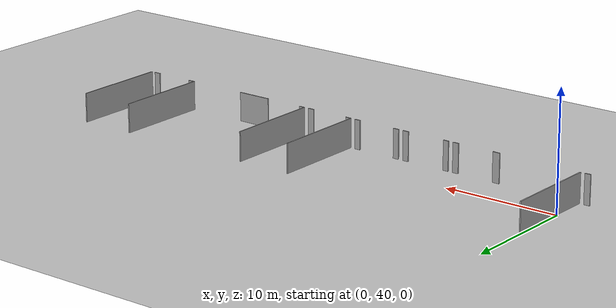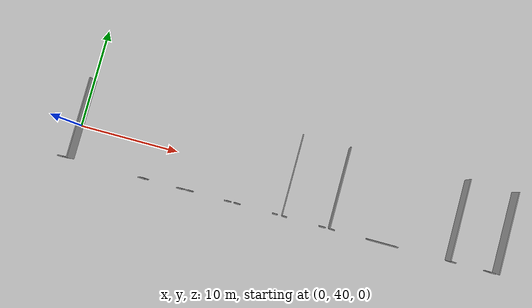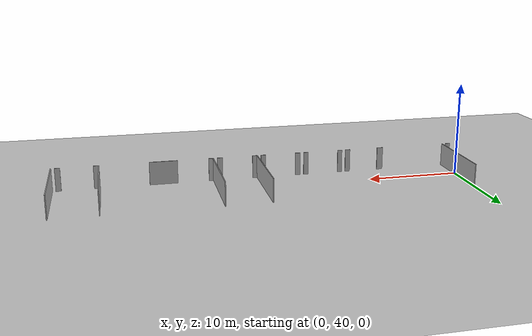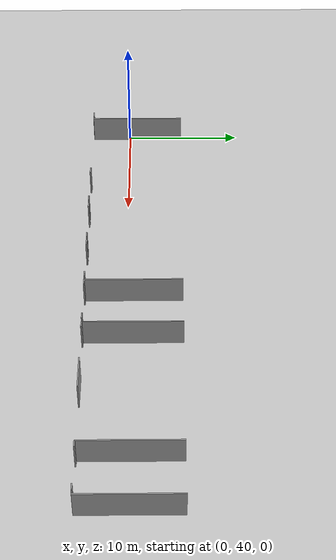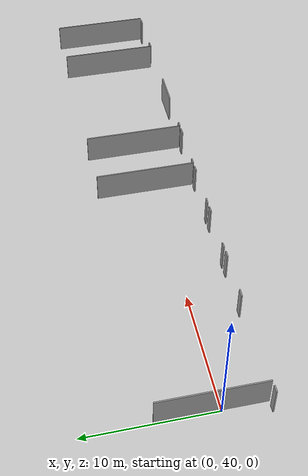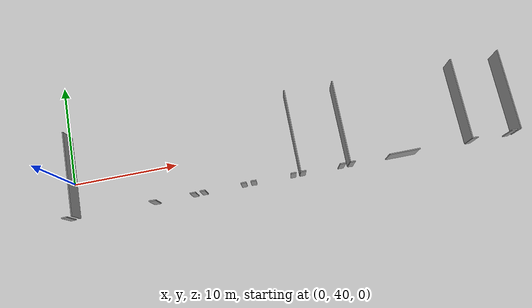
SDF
<sdf version="1.6">
 <world name="default">
  <model name="ground_plane">
   <static>1</static>
   <link name="link">
    <collision name="collision">
     <geometry><plane><normal>0 0 1</normal><size>100 100</size></plane></geometry>
     <surface><friction><ode><mu>100</mu><mu2>50</mu2></ode></friction></surface>
    </collision>
    <visual name="visual">
     <cast_shadows>0</cast_shadows>
     <geometry><plane><normal>0 0 1</normal><size>100 100</size></plane></geometry>
     <material>
      <script><uri>file://media/materials/scripts/gazebo.material</uri><name>Gazebo/Grey</name></script>
     </material>
    </visual>
   </link>
  </model>
  <model name="0510035517_A_40_1_105">
   <static>1</static>
   <link name="Wall_204">
    <collision name="Wall_204_Collision">
     <geometry><box><size>8.21638931778 0.1 2.5</size></box></geometry>
     <pose>4.10819465889 0 1.25 0 0 0</pose>
    </collision>
    <visual name="Wall_204_Visual">
     <pose>4.10819465889 0 1.25 0 0 0</pose>
     <geometry><box><size>8.21638931778 0.1 2.5</size></box></geometry>
     <material>
      <script><uri>file://media/materials/scripts/gazebo.material</uri><name>Gazebo/Grey</name></script>
      <ambient>1 1 1 1</ambient>
     </material>
    </visual>
    <pose>137.98389915 -27.191246831 0 0 0 1.57079632679</pose>
   </link>
   <link name="Wall_210">
    <collision name="Wall_210_Collision">
     <geometry><box><size>8.18690709924 0.1 2.5</size></box></geometry>
     <pose>4.09345354962 0 1.25 0 0 0</pose>
    </collision>
    <visual name="Wall_210_Visual">
     <pose>4.09345354962 0 1.25 0 0 0</pose>
     <geometry><box><size>8.18690709924 0.1 2.5</size></box></geometry>
     <material>
      <script><uri>file://media/materials/scripts/gazebo.material</uri><name>Gazebo/Grey</name></script>
      <ambient>1 1 1 1</ambient>
     </material>
    </visual>
    <pose>133.171435288 -27.1848929046 0 0 0 1.57079632679</pose>
   </link>
   <link name="Wall_214">
    <collision name="Wall_214_Collision">
     <geometry><box><size>0.555079011075 0.1 2.5</size></box></geometry>
     <pose>0.277539505537 0 1.25 0 0 0</pose>
    </collision>
    <visual name="Wall_214_Visual">
     <pose>0.277539505537 0 1.25 0 0 0</pose>
     <geometry><box><size>0.555079011075 0.1 2.5</size></box></geometry>
     <material>
      <script><uri>file://media/materials/scripts/gazebo.material</uri><name>Gazebo/Grey</name></script>
      <ambient>1 1 1 1</ambient>
     </material>
    </visual>
    <pose>137.612575691 -27.1871803181 0 0 0 3.14159265359</pose>
   </link>
   <link name="Wall_215">
    <collision name="Wall_215_Collision">
     <geometry><box><size>0.557116963382 0.1 2.5</size></box></geometry>
     <pose>0.278558481691 0 1.25 0 0 0</pose>
    </collision>
    <visual name="Wall_215_Visual">
     <pose>0.278558481691 0 1.25 0 0 0</pose>
     <geometry><box><size>0.557116963382 0.1 2.5</size></box></geometry>
     <material>
      <script><uri>file://media/materials/scripts/gazebo.material</uri><name>Gazebo/Grey</name></script>
      <ambient>1 1 1 1</ambient>
     </material>
    </visual>
    <pose>133.728547556 -27.1871803181 0 0 0 3.13748683725</pose>
   </link>
   <link name="Wall_222">
    <collision name="Wall_222_Collision">
     <geometry><box><size>8.18944866981 0.1 2.5</size></box></geometry>
     <pose>4.0947243349 0 1.25 0 0 0</pose>
    </collision>
    <visual name="Wall_222_Visual">
     <pose>4.0947243349 0 1.25 0 0 0</pose>
     <geometry><box><size>8.18944866981 0.1 2.5</size></box></geometry>
     <material>
      <script><uri>file://media/materials/scripts/gazebo.material</uri><name>Gazebo/Grey</name></script>
      <ambient>1 1 1 1</ambient>
     </material>
    </visual>
    <pose>121.183101097 -27.182097177 0 0 0 1.57079632679</pose>
   </link>
   <link name="Wall_226">
    <collision name="Wall_226_Collision">
     <geometry><box><size>2.9825330563 0.1 2.5</size></box></geometry>
     <pose>1.49126652815 0 1.25 0 0 0</pose>
    </collision>
    <visual name="Wall_226_Visual">
     <pose>1.49126652815 0 1.25 0 0 0</pose>
     <geometry><box><size>2.9825330563 0.1 2.5</size></box></geometry>
     <material>
      <script><uri>file://media/materials/scripts/gazebo.material</uri><name>Gazebo/Grey</name></script>
      <ambient>1 1 1 1</ambient>
     </material>
    </visual>
    <pose>127.999847506 -27.2037005267 0 0 0 3.14159265359</pose>
   </link>
   <link name="Wall_227">
    <collision name="Wall_227_Collision">
     <geometry><box><size>0.503694466396 0.1 2.5</size></box></geometry>
     <pose>0.251847233198 0 1.25 0 0 0</pose>
    </collision>
    <visual name="Wall_227_Visual">
     <pose>0.251847233198 0 1.25 0 0 0</pose>
     <geometry><box><size>0.503694466396 0.1 2.5</size></box></geometry>
     <material>
      <script><uri>file://media/materials/scripts/gazebo.material</uri><name>Gazebo/Grey</name></script>
      <ambient>1 1 1 1</ambient>
     </material>
    </visual>
    <pose>121.686332069 -27.2037005267 0 0 0 3.09868970335</pose>
   </link>
   <link name="Wall_228">
    <collision name="Wall_228_Collision">
     <geometry><box><size>8.1772491311 0.1 2.5</size></box></geometry>
     <pose>4.08862456555 0 1.25 0 0 0</pose>
    </collision>
    <visual name="Wall_228_Visual">
     <pose>4.08862456555 0 1.25 0 0 0</pose>
     <geometry><box><size>8.1772491311 0.1 2.5</size></box></geometry>
     <material>
      <script><uri>file://media/materials/scripts/gazebo.material</uri><name>Gazebo/Grey</name></script>
      <ambient>1 1 1 1</ambient>
     </material>
    </visual>
    <pose>116.385124187 -27.1848929046 0 0 0 1.57079632679</pose>
   </link>
   <link name="Wall_232">
    <collision name="Wall_232_Collision">
     <geometry><box><size>0.565499450385 0.1 2.5</size></box></geometry>
     <pose>0.282749725193 0 1.25 0 0 0</pose>
    </collision>
    <visual name="Wall_232_Visual">
     <pose>0.282749725193 0 1.25 0 0 0</pose>
     <geometry><box><size>0.565499450385 0.1 2.5</size></box></geometry>
     <material>
      <script><uri>file://media/materials/scripts/gazebo.material</uri><name>Gazebo/Grey</name></script>
      <ambient>1 1 1 1</ambient>
     </material>
    </visual>
    <pose>120.757642185 -27.1973466003 0 0 0 3.14159265359</pose>
   </link>
   <link name="Wall_233">
    <collision name="Wall_233_Collision">
     <geometry><box><size>0.521424865642 0.1 2.5</size></box></geometry>
     <pose>0.260712432821 0 1.25 0 0 0</pose>
    </collision>
    <visual name="Wall_233_Visual">
     <pose>0.260712432821 0 1.25 0 0 0</pose>
     <geometry><box><size>0.521424865642 0.1 2.5</size></box></geometry>
     <material>
      <script><uri>file://media/materials/scripts/gazebo.material</uri><name>Gazebo/Grey</name></script>
      <ambient>1 1 1 1</ambient>
     </material>
    </visual>
    <pose>116.90640031 -27.1973466003 0 0 0 3.11770641243</pose>
   </link>
   <link name="Wall_238">
    <collision name="Wall_238_Collision">
     <geometry><box><size>0.523309379031 0.1 2.5</size></box></geometry>
     <pose>0.261654689515 0 1.25 0 0 0</pose>
    </collision>
    <visual name="Wall_238_Visual">
     <pose>0.261654689515 0 1.25 0 0 0</pose>
     <geometry><box><size>0.523309379031 0.1 2.5</size></box></geometry>
     <material>
      <script><uri>file://media/materials/scripts/gazebo.material</uri><name>Gazebo/Grey</name></script>
      <ambient>1 1 1 1</ambient>
     </material>
    </visual>
    <pose>115.962969317 -27.1892135745 0 0 0 3.14159265359</pose>
   </link>
   <link name="Wall_239">
    <collision name="Wall_239_Collision">
     <geometry><box><size>0.531881316064 0.1 2.5</size></box></geometry>
     <pose>0.265940658032 0 1.25 0 0 0</pose>
    </collision>
    <visual name="Wall_239_Visual">
     <pose>0.265940658032 0 1.25 0 0 0</pose>
     <geometry><box><size>0.531881316064 0.1 2.5</size></box></geometry>
     <material>
      <script><uri>file://media/materials/scripts/gazebo.material</uri><name>Gazebo/Grey</name></script>
      <ambient>1 1 1 1</ambient>
     </material>
    </visual>
    <pose>112.112998227 -27.1892135745 0 0 0 3.10096461591</pose>
   </link>
   <link name="Wall_244">
    <collision name="Wall_244_Collision">
     <geometry><box><size>0.5240718502 0.1 2.5</size></box></geometry>
     <pose>0.2620359251 0 1.25 0 0 0</pose>
    </collision>
    <visual name="Wall_244_Visual">
     <pose>0.2620359251 0 1.25 0 0 0</pose>
     <geometry><box><size>0.5240718502 0.1 2.5</size></box></geometry>
     <material>
      <script><uri>file://media/materials/scripts/gazebo.material</uri><name>Gazebo/Grey</name></script>
      <ambient>1 1 1 1</ambient>
     </material>
    </visual>
    <pose>111.164484093 -27.1874344751 0 0 0 3.14159265359</pose>
   </link>
   <link name="Wall_245">
    <collision name="Wall_245_Collision">
     <geometry><box><size>0.49009554032 0.1 2.5</size></box></geometry>
     <pose>0.24504777016 0 1.25 0 0 0</pose>
    </collision>
    <visual name="Wall_245_Visual">
     <pose>0.24504777016 0 1.25 0 0 0</pose>
     <geometry><box><size>0.49009554032 0.1 2.5</size></box></geometry>
     <material>
      <script><uri>file://media/materials/scripts/gazebo.material</uri><name>Gazebo/Grey</name></script>
      <ambient>1 1 1 1</ambient>
     </material>
    </visual>
    <pose>107.262919121 -27.1874344751 0 0 0 3.12344112039</pose>
   </link>
   <link name="Wall_250">
    <collision name="Wall_250_Collision">
     <geometry><box><size>0.533729818341 0.1 2.5</size></box></geometry>
     <pose>0.266864909171 0 1.25 0 0 0</pose>
    </collision>
    <visual name="Wall_250_Visual">
     <pose>0.266864909171 0 1.25 0 0 0</pose>
     <geometry><box><size>0.533729818341 0.1 2.5</size></box></geometry>
     <material>
      <script><uri>file://media/materials/scripts/gazebo.material</uri><name>Gazebo/Grey</name></script>
      <ambient>1 1 1 1</ambient>
     </material>
    </visual>
    <pose>106.365236398 -27.2034463697 0 0 0 3.14159265359</pose>
   </link>
   <link name="Wall_251">
    <collision name="Wall_251_Collision">
     <geometry><box><size>0.650102749802 0.1 2.5</size></box></geometry>
     <pose>0.325051374901 0 1.25 0 0 0</pose>
    </collision>
    <visual name="Wall_251_Visual">
     <pose>0.325051374901 0 1.25 0 0 0</pose>
     <geometry><box><size>0.650102749802 0.1 2.5</size></box></geometry>
     <material>
      <script><uri>file://media/materials/scripts/gazebo.material</uri><name>Gazebo/Grey</name></script>
      <ambient>1 1 1 1</ambient>
     </material>
    </visual>
    <pose>102.6230279 -27.2034463697 0 0 0 3.10327026671</pose>
   </link>
   <link name="Wall_252">
    <collision name="Wall_252_Collision">
     <geometry><box><size>8.17674081699 0.1 2.5</size></box></geometry>
     <pose>4.08837040849 0 1.25 0 0 0</pose>
    </collision>
    <visual name="Wall_252_Visual">
     <pose>4.08837040849 0 1.25 0 0 0</pose>
     <geometry><box><size>8.17674081699 0.1 2.5</size></box></geometry>
     <material>
      <script><uri>file://media/materials/scripts/gazebo.material</uri><name>Gazebo/Grey</name></script>
      <ambient>1 1 1 1</ambient>
     </material>
    </visual>
    <pose>94.7550879066 -27.182097177 0 0 0 1.57079632679</pose>
   </link>
   <link name="Wall_262">
    <collision name="Wall_262_Collision">
     <geometry><box><size>0.519751180242 0.1 2.5</size></box></geometry>
     <pose>0.259875590121 0 1.25 0 0 0</pose>
    </collision>
    <visual name="Wall_262_Visual">
     <pose>0.259875590121 0 1.25 0 0 0</pose>
     <geometry><box><size>0.519751180242 0.1 2.5</size></box></geometry>
     <material>
      <script><uri>file://media/materials/scripts/gazebo.material</uri><name>Gazebo/Grey</name></script>
      <ambient>1 1 1 1</ambient>
     </material>
    </visual>
    <pose>94.3502157158 -27.182097177 0 0 0 3.14159265359</pose>
   </link>
   <pose>-94.6 63.7835382475 0 0 0 0</pose>
  </model>
 </world>
</sdf>
